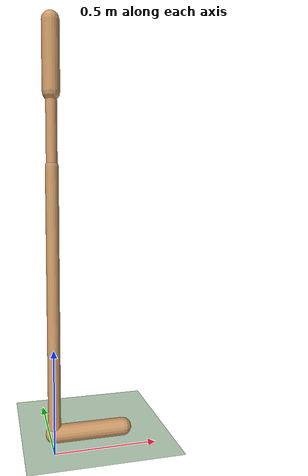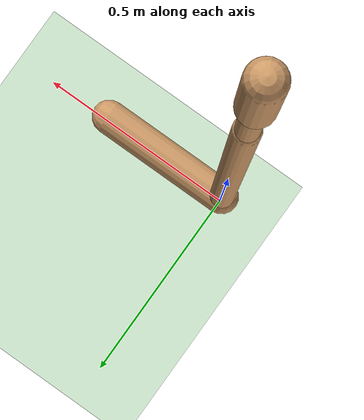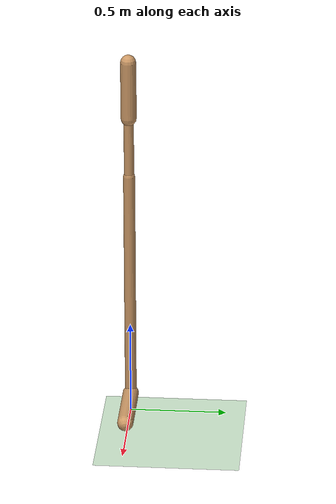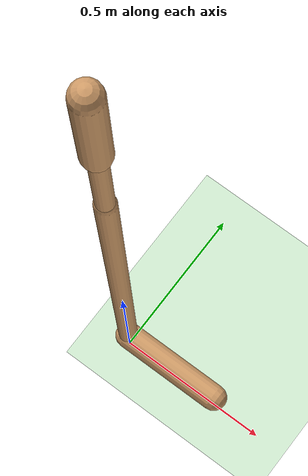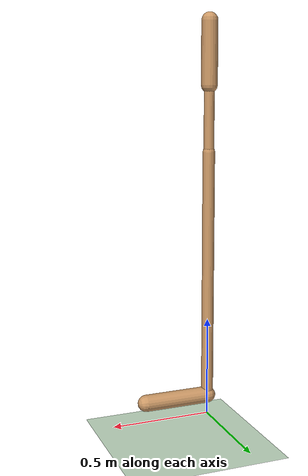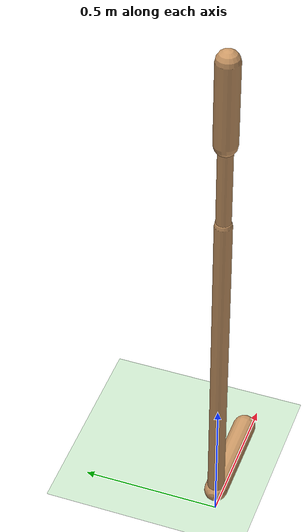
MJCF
<mujoco model="walker2d">
  <compiler angle="degree" inertiafromgeom="true" />
  <default>
    <joint armature="0.01" damping=".1" limited="true" />
    <geom conaffinity="0" condim="3" contype="1" density="1000" friction=".7 .1 .1" rgba="0.8 0.6 .4 1" />
  </default>
  <option integrator="RK4" timestep="0.002" />
  <worldbody>
    <light cutoff="100" diffuse="1 1 1" dir="-0 0 -1.3" directional="true" exponent="1" pos="0 0 1.3" specular=".1 .1 .1" />
    <geom conaffinity="1" condim="3" name="floor" pos="0 0 0" rgba="0.8 0.9 0.8 1" size="40 40 40" type="plane" material="MatPlane" />
    <body name="torso" pos="0 0 1.8166482657194138">
      <camera name="track" mode="trackcom" pos="0 -5 -1.25" xyaxes="1 0 0 0 0 1" />
      <joint armature="0" axis="1 0 0" damping="0" limited="false" name="rootx" pos="0 0 -1.25" stiffness="0" type="slide" />
      <joint armature="0" axis="0 0 1" damping="0" limited="false" name="rootz" pos="0 0 -1.25" ref="1.25" stiffness="0" type="slide" />
      <joint armature="0" axis="0 1 0" damping="0" limited="false" name="rooty" pos="0 0 0" stiffness="0" type="hinge" />
      <geom friction="0.9" name="torso_geom" size="0.039957888424396515 0.15038250386714935" type="capsule" />
      <body name="thigh" pos="0 0 -0.15038250386714935">
        <joint axis="0 -1 0" name="thigh_joint" pos="0 0 0" range="-150 0" type="hinge" />
        <site name="torso_thigh_site" pos="0 0 0" size="0.01" type="sphere" rgba="1 0 0 0.5" />
        <geom friction="0.9" pos="0 0 -0.16027650237083435" name="thigh_geom" size="0.025529175996780396 0.16027650237083435" type="capsule" />
        <body name="leg" pos="0 0 -0.9434093832969666">
          <joint axis="0 -1 0" name="leg_joint" pos="0 0 0.6228563785552979" range="-150 0" type="hinge" />
          <site name="thigh_leg_site" pos="0 0 0.25" size="0.01" type="sphere" rgba="1 0 0 0.5" />
          <geom friction="0.9" name="leg_geom" size="0.029935507103800774 0.6228563785552979" type="capsule" />
          <body name="foot" pos="0.33100277185440063 0 -0.7228563785552978">
            <joint axis="0 -1 0" name="foot_joint" pos="-0.33100277185440063 0 0.1" range="-45 45" type="hinge" />
            <site name="leg_foot_site" pos="-0.2 0 0.1" size="0.01" type="sphere" rgba="1 0 0 0.5" />
            <geom friction="0.9" pos="-0.16550138592720032 0 0.1" quat="0.70710678118654757 0 -0.70710678118654746 0" name="foot_geom" size="0.04175635799765587 0.16550138592720032" type="capsule" />
          </body>
        </body>
      </body>

      <body name="thigh_left" pos="0 0 -0.15038250386714935">
        <joint axis="0 -1 0" name="thigh_left_joint" pos="0 0 0" range="-150 0" type="hinge" />
        <site name="torso_thigh_left_site" pos="0 0 0" size="0.01" type="sphere" rgba="1 0 0 0.5" />
        <geom friction="0.9" name="thigh_left_geom" rgba=".7 .3 .6 1" size="0.025529175996780396 0.16027650237083435" pos="0 0 -0.16027650237083435" type="capsule" />
        <body name="leg_left" pos="0 0 -0.9434093832969666">
          <joint axis="0 -1 0" name="leg_left_joint" pos="0 0 0.6228563785552979" range="-150 0" type="hinge" />
          <site name="thigh_leg_left_site" pos="0 0 0.25" size="0.01" type="sphere" rgba="1 0 0 0.5" />
          <geom friction="0.9" name="leg_left_geom" rgba=".7 .3 .6 1" size="0.029935507103800774 0.6228563785552979" type="capsule" />
          <body name="foot_left" pos="0.33100277185440063 0 -0.7228563785552978">
            <joint axis="0 -1 0" name="foot_left_joint" pos="-0.33100277185440063 0 0.1" range="-45 45" type="hinge" />
            <site name="leg_foot_left_site" pos="-0.2 0 0.1" size="0.01" type="sphere" rgba="1 0 0 0.5" />
            <geom friction="1.9" name="foot_left_geom" rgba=".7 .3 .6 1" size="0.04175635799765587 0.16550138592720032" pos="-0.16550138592720032 0 0.1" type="capsule" quat="0.70710678118654757 0 -0.70710678118654746 0" />
          </body>
        </body>
      </body>
    </body>
  </worldbody>
  <actuator>

    <motor ctrllimited="true" ctrlrange="-1.0 1.0" gear="18.570385717828447" joint="thigh_joint" />
    <motor ctrllimited="true" ctrlrange="-1.0 1.0" gear="139.54078566527932" joint="leg_joint" />
    <motor ctrllimited="true" ctrlrange="-1.0 1.0" gear="80.15753602579596" joint="foot_joint" />
    <motor ctrllimited="true" ctrlrange="-1.0 1.0" gear="18.570385717828447" joint="thigh_left_joint" />
    <motor ctrllimited="true" ctrlrange="-1.0 1.0" gear="139.54078566527932" joint="leg_left_joint" />
    <motor ctrllimited="true" ctrlrange="-1.0 1.0" gear="80.15753602579596" joint="foot_left_joint" />

  </actuator>
    <asset>
        <texture type="skybox" builtin="gradient" rgb1=".4 .5 .6" rgb2="0 0 0" width="100" height="100" />
        <texture builtin="flat" height="1278" mark="cross" markrgb="1 1 1" name="texgeom" random="0.01" rgb1="0.8 0.6 0.4" rgb2="0.8 0.6 0.4" type="cube" width="127" />
        <texture builtin="checker" height="100" name="texplane" rgb1="0 0 0" rgb2="0.8 0.8 0.8" type="2d" width="100" />
        <material name="MatPlane" reflectance="0.5" shininess="1" specular="1" texrepeat="60 60" texture="texplane" />
        <material name="geom" texture="texgeom" texuniform="true" />
    </asset>

  <sensor>
    <force site="torso_thigh_site" name="torso_thigh_sensor" />
    <force site="thigh_leg_site" name="thigh_leg_sensor" />
    <force site="leg_foot_site" name="leg_foot_sensor" />
    <force site="torso_thigh_left_site" name="torso_thigh_left_sensor" />
    <force site="thigh_leg_left_site" name="thigh_leg_left_sensor" />
    <force site="leg_foot_left_site" name="leg_foot_left_sensor" />
  </sensor>
</mujoco>
